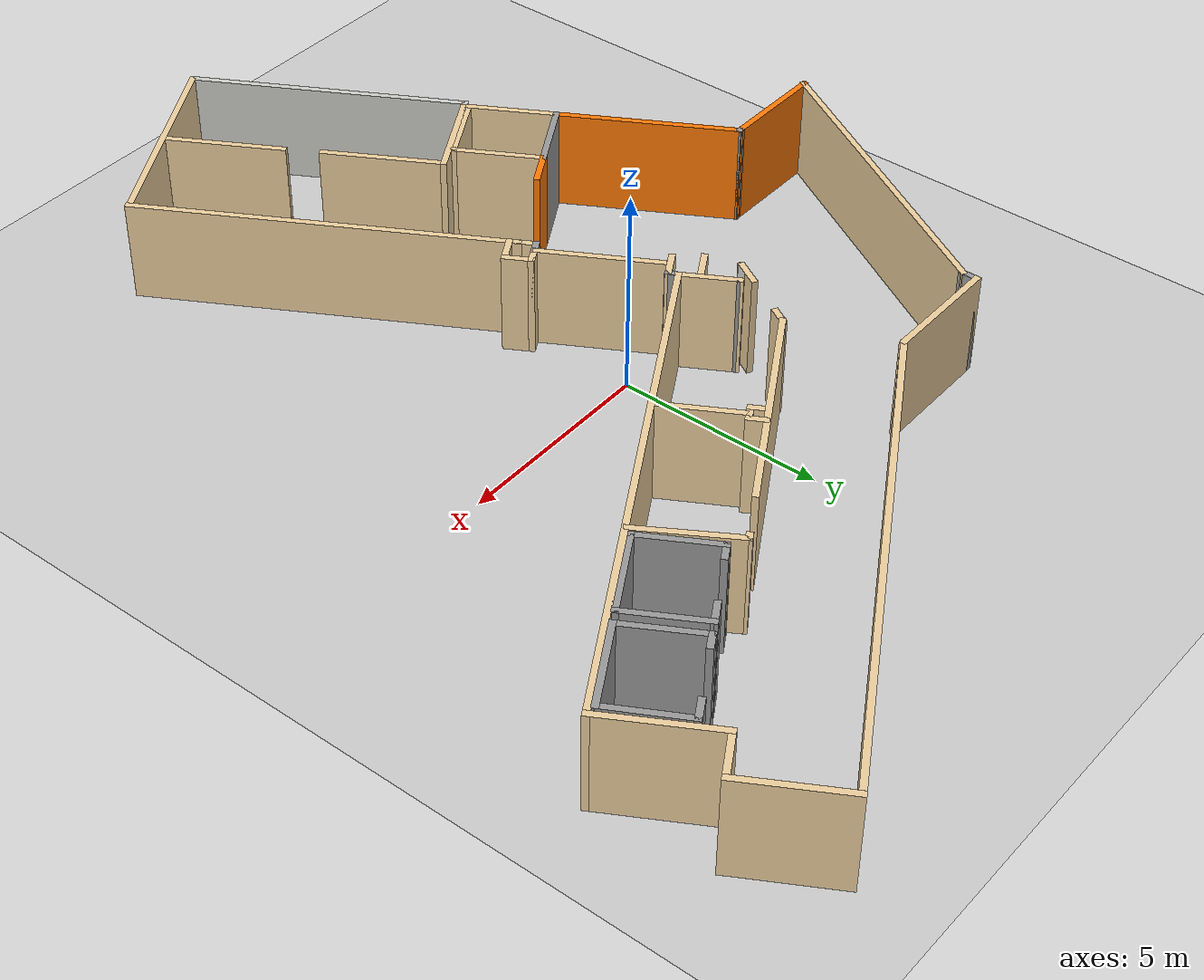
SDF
<sdf version='1.6'>
  <world name='default'>
    <light name='sun' type='directional'>
      <cast_shadows>1</cast_shadows>
      <pose frame=''>0 0 10 0 -0 0</pose>
      <diffuse>0.8 0.8 0.8 1</diffuse>
      <specular>0.1 0.1 0.1 1</specular>
      <attenuation>
        <range>1000</range>
        <constant>0.9</constant>
        <linear>0.01</linear>
        <quadratic>0.001</quadratic>
      </attenuation>
      <direction>-0.5 0.5 -1</direction>
    </light>
    <model name='ground_plane'>
      <static>1</static>
      <link name='link'>
        <collision name='collision'>
          <geometry>
            <plane>
              <normal>0 0 1</normal>
              <size>100 100</size>
            </plane>
          </geometry>
          <surface>
            <friction>
              <ode>
                <mu>100</mu>
                <mu2>50</mu2>
              </ode>
              <torsional>
                <ode/>
              </torsional>
            </friction>
            <contact>
              <ode/>
            </contact>
            <bounce/>
          </surface>
          <max_contacts>10</max_contacts>
        </collision>
        <visual name='visual'>
          <cast_shadows>0</cast_shadows>
          <geometry>
            <plane>
              <normal>0 0 1</normal>
              <size>100 100</size>
            </plane>
          </geometry>
          <material>
            <script>
              <uri>file://media/materials/scripts/gazebo.material</uri>
              <name>Gazebo/Grey</name>
            </script>
          </material>
        </visual>
        <self_collide>0</self_collide>
        <kinematic>0</kinematic>
        <gravity>1</gravity>
      </link>
    </model>
    <gravity>0 0 -9.8</gravity>
    <magnetic_field>6e-06 2.3e-05 -4.2e-05</magnetic_field>
    <atmosphere type='adiabatic'/>
    <physics name='default_physics' default='0' type='ode'>
      <max_step_size>0.001</max_step_size>
      <real_time_factor>1</real_time_factor>
      <real_time_update_rate>1000</real_time_update_rate>
    </physics>
    <scene>
      <ambient>0.4 0.4 0.4 1</ambient>
      <background>0.7 0.7 0.7 1</background>
      <shadows>1</shadows>
    </scene>
    <spherical_coordinates>
      <surface_model>EARTH_WGS84</surface_model>
      <latitude_deg>0</latitude_deg>
      <longitude_deg>0</longitude_deg>
      <elevation>0</elevation>
      <heading_deg>0</heading_deg>
    </spherical_coordinates>
    <model name='my_office_no_item'>
      <pose frame=''>0.391434 -0.86236 0 0 -0 0</pose>
      <link name='Wall_10'>
        <collision name='Wall_10_Collision'>
          <geometry>
            <box>
              <size>6.81721 0.15 2.5</size>
            </box>
          </geometry>
          <pose frame=''>0 0 1.25 0 -0 0</pose>
          <max_contacts>10</max_contacts>
          <surface>
            <contact>
              <ode/>
            </contact>
            <bounce/>
            <friction>
              <torsional>
                <ode/>
              </torsional>
              <ode/>
            </friction>
          </surface>
        </collision>
        <visual name='Wall_10_Visual'>
          <pose frame=''>0 0 1.25 0 -0 0</pose>
          <geometry>
            <box>
              <size>6.81721 0.15 2.5</size>
            </box>
          </geometry>
          <material>
            <script>
              <uri>file://media/materials/scripts/gazebo.material</uri>
              <name>Gazebo/CeilingTiled</name>
            </script>
            <ambient>0.921569 0.807843 0.615686 1</ambient>
          </material>
        </visual>
        <pose frame=''>-2.24104 -9.70627 0 0 0 -1.05271</pose>
        <self_collide>0</self_collide>
        <kinematic>0</kinematic>
        <gravity>1</gravity>
      </link>
      <link name='Wall_100'>
        <collision name='Wall_100_Collision'>
          <geometry>
            <box>
              <size>1.5 0.15 2.5</size>
            </box>
          </geometry>
          <pose frame=''>0 0 1.25 0 -0 0</pose>
          <max_contacts>10</max_contacts>
          <surface>
            <contact>
              <ode/>
            </contact>
            <bounce/>
            <friction>
              <torsional>
                <ode/>
              </torsional>
              <ode/>
            </friction>
          </surface>
        </collision>
        <visual name='Wall_100_Visual'>
          <pose frame=''>0 0 1.25 0 -0 0</pose>
          <geometry>
            <box>
              <size>1.5 0.15 2.5</size>
            </box>
          </geometry>
          <material>
            <script>
              <uri>file://media/materials/scripts/gazebo.material</uri>
              <name>Gazebo/Grey</name>
            </script>
            <ambient>0.921569 0.807843 0.615686 1</ambient>
          </material>
        </visual>
        <pose frame=''>-2.01529 1.80028 0 0 -0 2.0944</pose>
        <self_collide>0</self_collide>
        <kinematic>0</kinematic>
        <gravity>1</gravity>
      </link>
      <link name='Wall_101'>
        <collision name='Wall_101_Collision'>
          <geometry>
            <box>
              <size>0.704824 0.15 2.5</size>
            </box>
          </geometry>
          <pose frame=''>0 0 1.25 0 -0 0</pose>
          <max_contacts>10</max_contacts>
          <surface>
            <contact>
              <ode/>
            </contact>
            <bounce/>
            <friction>
              <torsional>
                <ode/>
              </torsional>
              <ode/>
            </friction>
          </surface>
        </collision>
        <visual name='Wall_101_Visual'>
          <pose frame=''>0 0 1.25 0 -0 0</pose>
          <geometry>
            <box>
              <size>0.704824 0.15 2.5</size>
            </box>
          </geometry>
          <material>
            <script>
              <uri>file://media/materials/scripts/gazebo.material</uri>
              <name>Gazebo/Grey</name>
            </script>
            <ambient>1 1 1 1</ambient>
          </material>
        </visual>
        <pose frame=''>-2.58645 2.23531 0 0 0 -2.5723</pose>
        <self_collide>0</self_collide>
        <kinematic>0</kinematic>
        <gravity>1</gravity>
      </link>
      <link name='Wall_103'>
        <collision name='Wall_103_Collision'>
          <geometry>
            <box>
              <size>0.75 0.15 2.5</size>
            </box>
          </geometry>
          <pose frame=''>0 0 1.25 0 -0 0</pose>
          <max_contacts>10</max_contacts>
          <surface>
            <contact>
              <ode/>
            </contact>
            <bounce/>
            <friction>
              <torsional>
                <ode/>
              </torsional>
              <ode/>
            </friction>
          </surface>
        </collision>
        <visual name='Wall_103_Visual'>
          <pose frame=''>0 0 1.25 0 -0 0</pose>
          <geometry>
            <box>
              <size>0.75 0.15 2.5</size>
            </box>
          </geometry>
          <material>
            <script>
              <uri>file://media/materials/scripts/gazebo.material</uri>
              <name>Gazebo/Grey</name>
            </script>
            <ambient>0.921569 0.807843 0.615686 1</ambient>
          </material>
        </visual>
        <pose frame=''>-2.30972 1.40421 0 0 -0 0.523599</pose>
        <self_collide>0</self_collide>
        <kinematic>0</kinematic>
        <gravity>1</gravity>
      </link>
      <link name='Wall_105'>
        <collision name='Wall_105_Collision'>
          <geometry>
            <box>
              <size>0.75 0.15 2.5</size>
            </box>
          </geometry>
          <pose frame=''>0 0 1.25 0 -0 0</pose>
          <max_contacts>10</max_contacts>
          <surface>
            <contact>
              <ode/>
            </contact>
            <bounce/>
            <friction>
              <torsional>
                <ode/>
              </torsional>
              <ode/>
            </friction>
          </surface>
        </collision>
        <visual name='Wall_105_Visual'>
          <pose frame=''>0 0 1.25 0 -0 0</pose>
          <geometry>
            <box>
              <size>0.75 0.15 2.5</size>
            </box>
          </geometry>
          <material>
            <script>
              <uri>file://media/materials/scripts/gazebo.material</uri>
              <name>Gazebo/Grey</name>
            </script>
            <ambient>0.921569 0.807843 0.615686 1</ambient>
          </material>
        </visual>
        <pose frame=''>-1.85346 0.856693 0 0 -0 0.523599</pose>
        <self_collide>0</self_collide>
        <kinematic>0</kinematic>
        <gravity>1</gravity>
      </link>
      <link name='Wall_107'>
        <collision name='Wall_107_Collision'>
          <geometry>
            <box>
              <size>0.375318 0.15 2.5</size>
            </box>
          </geometry>
          <pose frame=''>0 0 1.25 0 -0 0</pose>
          <max_contacts>10</max_contacts>
          <surface>
            <contact>
              <ode/>
            </contact>
            <bounce/>
            <friction>
              <torsional>
                <ode/>
              </torsional>
              <ode/>
            </friction>
          </surface>
        </collision>
        <visual name='Wall_107_Visual'>
          <pose frame=''>0 0 1.25 0 -0 0</pose>
          <geometry>
            <box>
              <size>0.375318 0.15 2.5</size>
            </box>
          </geometry>
          <material>
            <script>
              <uri>file://media/materials/scripts/gazebo.material</uri>
              <name>Gazebo/Grey</name>
            </script>
            <ambient>1 1 1 1</ambient>
          </material>
        </visual>
        <pose frame=''>-1.63572 1.1112 0 0 -0 1.9535</pose>
        <self_collide>0</self_collide>
        <kinematic>0</kinematic>
        <gravity>1</gravity>
      </link>
      <link name='Wall_114'>
        <collision name='Wall_114_Collision'>
          <geometry>
            <box>
              <size>3 0.15 2.5</size>
            </box>
          </geometry>
          <pose frame=''>0 0 1.25 0 -0 0</pose>
          <max_contacts>10</max_contacts>
          <surface>
            <contact>
              <ode/>
            </contact>
            <bounce/>
            <friction>
              <torsional>
                <ode/>
              </torsional>
              <ode/>
            </friction>
          </surface>
        </collision>
        <visual name='Wall_114_Visual'>
          <pose frame=''>0 0 1.25 0 -0 0</pose>
          <geometry>
            <box>
              <size>3 0.15 2.5</size>
            </box>
          </geometry>
          <material>
            <script>
              <uri>file://media/materials/scripts/gazebo.material</uri>
              <name>Gazebo/Grey</name>
            </script>
            <ambient>0.921569 0.807843 0.615686 1</ambient>
          </material>
        </visual>
        <pose frame=''>-1.09613 -0.526424 0 0 -0 2.0944</pose>
        <self_collide>0</self_collide>
        <kinematic>0</kinematic>
        <gravity>1</gravity>
      </link>
      <link name='Wall_118'>
        <collision name='Wall_118_Collision'>
          <geometry>
            <box>
              <size>0.5 0.15 2.5</size>
            </box>
          </geometry>
          <pose frame=''>0 0 1.25 0 -0 0</pose>
          <max_contacts>10</max_contacts>
          <surface>
            <contact>
              <ode/>
            </contact>
            <bounce/>
            <friction>
              <torsional>
                <ode/>
              </torsional>
              <ode/>
            </friction>
          </surface>
        </collision>
        <visual name='Wall_118_Visual'>
          <pose frame=''>0 0 1.25 0 -0 0</pose>
          <geometry>
            <box>
              <size>0.5 0.15 2.5</size>
            </box>
          </geometry>
          <material>
            <script>
              <uri>file://media/materials/scripts/gazebo.material</uri>
              <name>Gazebo/Grey</name>
            </script>
            <ambient>0.921569 0.807843 0.615686 1</ambient>
          </material>
        </visual>
        <pose frame=''>-0.232079 -1.67301 0 0 -0 0.523599</pose>
        <self_collide>0</self_collide>
        <kinematic>0</kinematic>
        <gravity>1</gravity>
      </link>
      <link name='Wall_119'>
        <collision name='Wall_119_Collision'>
          <geometry>
            <box>
              <size>0.75 0.15 2.5</size>
            </box>
          </geometry>
          <pose frame=''>0 0 1.25 0 -0 0</pose>
          <max_contacts>10</max_contacts>
          <surface>
            <contact>
              <ode/>
            </contact>
            <bounce/>
            <friction>
              <torsional>
                <ode/>
              </torsional>
              <ode/>
            </friction>
          </surface>
        </collision>
        <visual name='Wall_119_Visual'>
          <pose frame=''>0 0 1.25 0 -0 0</pose>
          <geometry>
            <box>
              <size>0.75 0.15 2.5</size>
            </box>
          </geometry>
          <material>
            <script>
              <uri>file://media/materials/scripts/gazebo.material</uri>
              <name>Gazebo/Grey</name>
            </script>
            <ambient>0.921569 0.807843 0.615686 1</ambient>
          </material>
        </visual>
        <pose frame=''>0.069475 -1.84532 0 0 0 -1.0472</pose>
        <self_collide>0</self_collide>
        <kinematic>0</kinematic>
        <gravity>1</gravity>
      </link>
      <link name='Wall_12'>
        <collision name='Wall_12_Collision'>
          <geometry>
            <box>
              <size>2.7 0.15 2.5</size>
            </box>
          </geometry>
          <pose frame=''>0 0 1.25 0 -0 0</pose>
          <max_contacts>10</max_contacts>
          <surface>
            <contact>
              <ode/>
            </contact>
            <bounce/>
            <friction>
              <torsional>
                <ode/>
              </torsional>
              <ode/>
            </friction>
          </surface>
        </collision>
        <visual name='Wall_12_Visual'>
          <pose frame=''>0 0 1.25 0 -0 0</pose>
          <geometry>
            <box>
              <size>2.7 0.15 2.5</size>
            </box>
          </geometry>
          <material>
            <script>
              <uri>file://media/materials/scripts/gazebo.material</uri>
              <name>Gazebo/Grey</name>
            </script>
            <ambient>0.921569 0.807843 0.615686 1</ambient>
          </material>
        </visual>
        <pose frame=''>-2.78771 -6.17263 0 0 -0 0.523599</pose>
        <self_collide>0</self_collide>
        <kinematic>0</kinematic>
        <gravity>1</gravity>
      </link>
      <link name='Wall_121'>
        <collision name='Wall_121_Collision'>
          <geometry>
            <box>
              <size>0.75 0.15 2.5</size>
            </box>
          </geometry>
          <pose frame=''>0 0 1.25 0 -0 0</pose>
          <max_contacts>10</max_contacts>
          <surface>
            <contact>
              <ode/>
            </contact>
            <bounce/>
            <friction>
              <torsional>
                <ode/>
              </torsional>
              <ode/>
            </friction>
          </surface>
        </collision>
        <visual name='Wall_121_Visual'>
          <pose frame=''>0 0 1.25 0 -0 0</pose>
          <geometry>
            <box>
              <size>0.75 0.15 2.5</size>
            </box>
          </geometry>
          <material>
            <script>
              <uri>file://media/materials/scripts/gazebo.material</uri>
              <name>Gazebo/Grey</name>
            </script>
            <ambient>0.921569 0.807843 0.615686 1</ambient>
          </material>
        </visual>
        <pose frame=''>-0.040333 -2.25513 0 0 0 -2.61799</pose>
        <self_collide>0</self_collide>
        <kinematic>0</kinematic>
        <gravity>1</gravity>
      </link>
      <link name='Wall_127'>
        <collision name='Wall_127_Collision'>
          <geometry>
            <box>
              <size>0.75 0.15 2.5</size>
            </box>
          </geometry>
          <pose frame=''>0 0 1.25 0 -0 0</pose>
          <max_contacts>10</max_contacts>
          <surface>
            <contact>
              <ode/>
            </contact>
            <bounce/>
            <friction>
              <torsional>
                <ode/>
              </torsional>
              <ode/>
            </friction>
          </surface>
        </collision>
        <visual name='Wall_127_Visual'>
          <pose frame=''>0 0 1.25 0 -0 0</pose>
          <geometry>
            <box>
              <size>0.75 0.15 2.5</size>
            </box>
          </geometry>
          <material>
            <script>
              <uri>file://media/materials/scripts/gazebo.material</uri>
              <name>Gazebo/Grey</name>
            </script>
            <ambient>0.921569 0.807843 0.615686 1</ambient>
          </material>
        </visual>
        <pose frame=''>-0.45014 -2.14532 0 0 -0 2.0944</pose>
        <self_collide>0</self_collide>
        <kinematic>0</kinematic>
        <gravity>1</gravity>
      </link>
      <link name='Wall_128'>
        <collision name='Wall_128_Collision'>
          <geometry>
            <box>
              <size>0.4 0.15 2.5</size>
            </box>
          </geometry>
          <pose frame=''>0 0 1.25 0 -0 0</pose>
          <max_contacts>10</max_contacts>
          <surface>
            <contact>
              <ode/>
            </contact>
            <bounce/>
            <friction>
              <torsional>
                <ode/>
              </torsional>
              <ode/>
            </friction>
          </surface>
        </collision>
        <visual name='Wall_128_Visual'>
          <pose frame=''>0 0 1.25 0 -0 0</pose>
          <geometry>
            <box>
              <size>0.4 0.15 2.5</size>
            </box>
          </geometry>
          <material>
            <script>
              <uri>file://media/materials/scripts/gazebo.material</uri>
              <name>Gazebo/Grey</name>
            </script>
            <ambient>1 1 1 1</ambient>
          </material>
        </visual>
        <pose frame=''>-0.491887 -1.82301 0 0 -0 0.523599</pose>
        <self_collide>0</self_collide>
        <kinematic>0</kinematic>
        <gravity>1</gravity>
      </link>
      <link name='Wall_130'>
        <collision name='Wall_130_Collision'>
          <geometry>
            <box>
              <size>2 0.15 2.5</size>
            </box>
          </geometry>
          <pose frame=''>0 0 1.25 0 -0 0</pose>
          <max_contacts>10</max_contacts>
          <surface>
            <contact>
              <ode/>
            </contact>
            <bounce/>
            <friction>
              <torsional>
                <ode/>
              </torsional>
              <ode/>
            </friction>
          </surface>
        </collision>
        <visual name='Wall_130_Visual'>
          <pose frame=''>0 0 1.25 0 -0 0</pose>
          <geometry>
            <box>
              <size>2 0.15 2.5</size>
            </box>
          </geometry>
          <material>
            <script>
              <uri>file://media/materials/scripts/gazebo.material</uri>
              <name>Gazebo/Grey</name>
            </script>
            <ambient>0.921569 0.807843 0.615686 1</ambient>
          </material>
        </visual>
        <pose frame=''>1.6661 4.2808 0 0 -0 2.0944</pose>
        <self_collide>0</self_collide>
        <kinematic>0</kinematic>
        <gravity>1</gravity>
      </link>
      <link name='Wall_132'>
        <collision name='Wall_132_Collision'>
          <geometry>
            <box>
              <size>0.5 0.15 2.5</size>
            </box>
          </geometry>
          <pose frame=''>0 0 1.25 0 -0 0</pose>
          <max_contacts>10</max_contacts>
          <surface>
            <contact>
              <ode/>
            </contact>
            <bounce/>
            <friction>
              <torsional>
                <ode/>
              </torsional>
              <ode/>
            </friction>
          </surface>
        </collision>
        <visual name='Wall_132_Visual'>
          <pose frame=''>0 0 1.25 0 -0 0</pose>
          <geometry>
            <box>
              <size>0.5 0.15 2.5</size>
            </box>
          </geometry>
          <material>
            <script>
              <uri>file://media/materials/scripts/gazebo.material</uri>
              <name>Gazebo/Grey</name>
            </script>
            <ambient>0.921569 0.807843 0.615686 1</ambient>
          </material>
        </visual>
        <pose frame=''>0.900947 5.21621 0 0 0 -1.0472</pose>
        <self_collide>0</self_collide>
        <kinematic>0</kinematic>
        <gravity>1</gravity>
      </link>
      <link name='Wall_133'>
        <collision name='Wall_133_Collision'>
          <geometry>
            <box>
              <size>0.5 0.15 2.5</size>
            </box>
          </geometry>
          <pose frame=''>0 0 1.25 0 -0 0</pose>
          <max_contacts>10</max_contacts>
          <surface>
            <contact>
              <ode/>
            </contact>
            <bounce/>
            <friction>
              <torsional>
                <ode/>
              </torsional>
              <ode/>
            </friction>
          </surface>
        </collision>
        <visual name='Wall_133_Visual'>
          <pose frame=''>0 0 1.25 0 -0 0</pose>
          <geometry>
            <box>
              <size>0.5 0.15 2.5</size>
            </box>
          </geometry>
          <material>
            <script>
              <uri>file://media/materials/scripts/gazebo.material</uri>
              <name>Gazebo/Grey</name>
            </script>
            <ambient>0.921569 0.807843 0.615686 1</ambient>
          </material>
        </visual>
        <pose frame=''>1.14 5.15215 0 0 -0 0.523599</pose>
        <self_collide>0</self_collide>
        <kinematic>0</kinematic>
        <gravity>1</gravity>
      </link>
      <link name='Wall_134'>
        <collision name='Wall_134_Collision'>
          <geometry>
            <box>
              <size>0.5 0.15 2.5</size>
            </box>
          </geometry>
          <pose frame=''>0 0 1.25 0 -0 0</pose>
          <max_contacts>10</max_contacts>
          <surface>
            <contact>
              <ode/>
            </contact>
            <bounce/>
            <friction>
              <torsional>
                <ode/>
              </torsional>
              <ode/>
            </friction>
          </surface>
        </collision>
        <visual name='Wall_134_Visual'>
          <pose frame=''>0 0 1.25 0 -0 0</pose>
          <geometry>
            <box>
              <size>0.5 0.15 2.5</size>
            </box>
          </geometry>
          <material>
            <script>
              <uri>file://media/materials/scripts/gazebo.material</uri>
              <name>Gazebo/Grey</name>
            </script>
            <ambient>0.921569 0.807843 0.615686 1</ambient>
          </material>
        </visual>
        <pose frame=''>1.20406 5.39121 0 0 -0 2.0944</pose>
        <self_collide>0</self_collide>
        <kinematic>0</kinematic>
        <gravity>1</gravity>
      </link>
      <link name='Wall_138'>
        <collision name='Wall_138_Collision'>
          <geometry>
            <box>
              <size>0.5 0.15 2.5</size>
            </box>
          </geometry>
          <pose frame=''>0 0 1.25 0 -0 0</pose>
          <max_contacts>10</max_contacts>
          <surface>
            <contact>
              <ode/>
            </contact>
            <bounce/>
            <friction>
              <torsional>
                <ode/>
              </torsional>
              <ode/>
            </friction>
          </surface>
        </collision>
        <visual name='Wall_138_Visual'>
          <pose frame=''>0 0 1.25 0 -0 0</pose>
          <geometry>
            <box>
              <size>0.5 0.15 2.5</size>
            </box>
          </geometry>
          <material>
            <script>
              <uri>file://media/materials/scripts/gazebo.material</uri>
              <name>Gazebo/Grey</name>
            </script>
            <ambient>0.921569 0.807843 0.615686 1</ambient>
          </material>
        </visual>
        <pose frame=''>-1.85761 3.75287 0 0 0 -2.0944</pose>
        <self_collide>0</self_collide>
        <kinematic>0</kinematic>
        <gravity>1</gravity>
      </link>
      <link name='Wall_140'>
        <collision name='Wall_140_Collision'>
          <geometry>
            <box>
              <size>0.75 0.15 2.5</size>
            </box>
          </geometry>
          <pose frame=''>0 0 1.25 0 -0 0</pose>
          <max_contacts>10</max_contacts>
          <surface>
            <contact>
              <ode/>
            </contact>
            <bounce/>
            <friction>
              <torsional>
                <ode/>
              </torsional>
              <ode/>
            </friction>
          </surface>
        </collision>
        <visual name='Wall_140_Visual'>
          <pose frame=''>0 0 1.25 0 -0 0</pose>
          <geometry>
            <box>
              <size>0.75 0.15 2.5</size>
            </box>
          </geometry>
          <material>
            <script>
              <uri>file://media/materials/scripts/gazebo.material</uri>
              <name>Gazebo/Grey</name>
            </script>
            <ambient>0.921569 0.807843 0.615686 1</ambient>
          </material>
        </visual>
        <pose frame=''>-2.67011 2.34558 0 0 -0 1.0472</pose>
        <self_collide>0</self_collide>
        <kinematic>0</kinematic>
        <gravity>1</gravity>
      </link>
      <link name='Wall_142'>
        <collision name='Wall_142_Collision'>
          <geometry>
            <box>
              <size>5.75 0.15 2.5</size>
            </box>
          </geometry>
          <pose frame=''>0 0 1.25 0 -0 0</pose>
          <max_contacts>10</max_contacts>
          <surface>
            <contact>
              <ode/>
            </contact>
            <bounce/>
            <friction>
              <torsional>
                <ode/>
              </torsional>
              <ode/>
            </friction>
          </surface>
        </collision>
        <visual name='Wall_142_Visual'>
          <pose frame=''>0 0 1.25 0 -0 0</pose>
          <geometry>
            <box>
              <size>5.75 0.15 2.5</size>
            </box>
          </geometry>
          <material>
            <script>
              <uri>file://media/materials/scripts/gazebo.material</uri>
              <name>Gazebo/Grey</name>
            </script>
            <ambient>0.921569 0.807843 0.615686 1</ambient>
          </material>
        </visual>
        <pose frame=''>0.654765 5.30443 0 0 -0 0.523599</pose>
        <self_collide>0</self_collide>
        <kinematic>0</kinematic>
        <gravity>1</gravity>
      </link>
      <link name='Wall_144'>
        <collision name='Wall_144_Collision'>
          <geometry>
            <box>
              <size>0.25 0.15 2.5</size>
            </box>
          </geometry>
          <pose frame=''>0 0 1.25 0 -0 0</pose>
          <max_contacts>10</max_contacts>
          <surface>
            <contact>
              <ode/>
            </contact>
            <bounce/>
            <friction>
              <torsional>
                <ode/>
              </torsional>
              <ode/>
            </friction>
          </surface>
        </collision>
        <visual name='Wall_144_Visual'>
          <pose frame=''>0 0 1.25 0 -0 0</pose>
          <geometry>
            <box>
              <size>0.25 0.15 2.5</size>
            </box>
          </geometry>
          <material>
            <script>
              <uri>file://media/materials/scripts/gazebo.material</uri>
              <name>Gazebo/Grey</name>
            </script>
            <ambient>0.921569 0.807843 0.615686 1</ambient>
          </material>
        </visual>
        <pose frame=''>4.11887 7.30443 0 0 0 -2.61799</pose>
        <self_collide>0</self_collide>
        <kinematic>0</kinematic>
        <gravity>1</gravity>
      </link>
      <link name='Wall_146'>
        <collision name='Wall_146_Collision'>
          <geometry>
            <box>
              <size>1 0.15 2.5</size>
            </box>
          </geometry>
          <pose frame=''>0 0 1.25 0 -0 0</pose>
          <max_contacts>10</max_contacts>
          <surface>
            <contact>
              <ode/>
            </contact>
            <bounce/>
            <friction>
              <torsional>
                <ode/>
              </torsional>
              <ode/>
            </friction>
          </surface>
        </collision>
        <visual name='Wall_146_Visual'>
          <pose frame=''>0 0 1.25 0 -0 0</pose>
          <geometry>
            <box>
              <size>1 0.15 2.5</size>
            </box>
          </geometry>
          <material>
            <script>
              <uri>file://media/materials/scripts/gazebo.material</uri>
              <name>Gazebo/Grey</name>
            </script>
            <ambient>0.996078 0.47451 0.0196078 1</ambient>
          </material>
        </visual>
        <pose frame=''>-2.92194 -3.69198 0 0 -0 0.523599</pose>
        <self_collide>0</self_collide>
        <kinematic>0</kinematic>
        <gravity>1</gravity>
      </link>
      <link name='Wall_148'>
        <collision name='Wall_148_Collision'>
          <geometry>
            <box>
              <size>3 0.15 2.5</size>
            </box>
          </geometry>
          <pose frame=''>0 0 1.25 0 -0 0</pose>
          <max_contacts>10</max_contacts>
          <surface>
            <contact>
              <ode/>
            </contact>
            <bounce/>
            <friction>
              <torsional>
                <ode/>
              </torsional>
              <ode/>
            </friction>
          </surface>
        </collision>
        <visual name='Wall_148_Visual'>
          <pose frame=''>0 0 1.25 0 -0 0</pose>
          <geometry>
            <box>
              <size>3 0.15 2.5</size>
            </box>
          </geometry>
          <material>
            <script>
              <uri>file://media/materials/scripts/gazebo.material</uri>
              <name>Gazebo/Grey</name>
            </script>
            <ambient>0.921569 0.807843 0.615686 1</ambient>
          </material>
        </visual>
        <pose frame=''>-0.971033 -6.76922 0 0 0 -1.0472</pose>
        <self_collide>0</self_collide>
        <kinematic>0</kinematic>
        <gravity>1</gravity>
      </link>
      <link name='Wall_151'>
        <collision name='Wall_151_Collision'>
          <geometry>
            <box>
              <size>3 0.15 2.5</size>
            </box>
          </geometry>
          <pose frame=''>0 0 1.25 0 -0 0</pose>
          <max_contacts>10</max_contacts>
          <surface>
            <contact>
              <ode/>
            </contact>
            <bounce/>
            <friction>
              <torsional>
                <ode/>
              </torsional>
              <ode/>
            </friction>
          </surface>
        </collision>
        <visual name='Wall_151_Visual'>
          <pose frame=''>0 0 1.25 0 -0 0</pose>
          <geometry>
            <box>
              <size>3 0.15 2.5</size>
            </box>
          </geometry>
          <material>
            <script>
              <uri>file://media/materials/scripts/gazebo.material</uri>
              <name>Gazebo/Grey</name>
            </script>
            <ambient>0.921569 0.807843 0.615686 1</ambient>
          </material>
        </visual>
        <pose frame=''>0.936909 -10.0288 0 0 0 -1.0472</pose>
        <self_collide>0</self_collide>
        <kinematic>0</kinematic>
        <gravity>1</gravity>
      </link>
      <link name='Wall_20'>
        <collision name='Wall_20_Collision'>
          <geometry>
            <box>
              <size>2 0.15 2.5</size>
            </box>
          </geometry>
          <pose frame=''>0 0 1.25 0 -0 0</pose>
          <max_contacts>10</max_contacts>
          <surface>
            <contact>
              <ode/>
            </contact>
            <bounce/>
            <friction>
              <torsional>
                <ode/>
              </torsional>
              <ode/>
            </friction>
          </surface>
        </collision>
        <visual name='Wall_20_Visual'>
          <pose frame=''>0 0 1.25 0 -0 0</pose>
          <geometry>
            <box>
              <size>2 0.15 2.5</size>
            </box>
          </geometry>
          <material>
            <script>
              <uri>file://media/materials/scripts/gazebo.material</uri>
              <name>Gazebo/Grey</name>
            </script>
            <ambient>0.921569 0.807843 0.615686 1</ambient>
          </material>
        </visual>
        <pose frame=''>-3.04107 -6.18563 0 0 -0 0.523599</pose>
        <self_collide>0</self_collide>
        <kinematic>0</kinematic>
        <gravity>1</gravity>
      </link>
      <link name='Wall_23'>
        <collision name='Wall_23_Collision'>
          <geometry>
            <box>
              <size>2.25 0.15 2.5</size>
            </box>
          </geometry>
          <pose frame=''>0 0 1.25 0 -0 0</pose>
          <max_contacts>10</max_contacts>
          <surface>
            <contact>
              <ode/>
            </contact>
            <bounce/>
            <friction>
              <torsional>
                <ode/>
              </torsional>
              <ode/>
            </friction>
          </surface>
        </collision>
        <visual name='Wall_23_Visual'>
          <pose frame=''>0 0 1.25 0 -0 0</pose>
          <geometry>
            <box>
              <size>2.25 0.15 2.5</size>
            </box>
          </geometry>
          <material>
            <script>
              <uri>file://media/materials/scripts/gazebo.material</uri>
              <name>Gazebo/Grey</name>
            </script>
            <ambient>0.921569 0.807843 0.615686 1</ambient>
          </material>
        </visual>
        <pose frame=''>-4.36715 -5.73881 0 0 -0 2.0944</pose>
        <self_collide>0</self_collide>
        <kinematic>0</kinematic>
        <gravity>1</gravity>
      </link>
      <link name='Wall_24'>
        <collision name='Wall_24_Collision'>
          <geometry>
            <box>
              <size>2 0.15 2.5</size>
            </box>
          </geometry>
          <pose frame=''>0 0 1.25 0 -0 0</pose>
          <max_contacts>10</max_contacts>
          <surface>
            <contact>
              <ode/>
            </contact>
            <bounce/>
            <friction>
              <torsional>
                <ode/>
              </torsional>
              <ode/>
            </friction>
          </surface>
        </collision>
        <visual name='Wall_24_Visual'>
          <pose frame=''>0 0 1.25 0 -0 0</pose>
          <geometry>
            <box>
              <size>2 0.15 2.5</size>
            </box>
          </geometry>
          <material>
            <script>
              <uri>file://media/materials/scripts/gazebo.material</uri>
              <name>Gazebo/Grey</name>
            </script>
            <ambient>1 1 1 1</ambient>
          </material>
        </visual>
        <pose frame=''>-4.09107 -4.36698 0 0 -0 0.523599</pose>
        <self_collide>0</self_collide>
        <kinematic>0</kinematic>
        <gravity>1</gravity>
      </link>
      <link name='Wall_25'>
        <collision name='Wall_25_Collision'>
          <geometry>
            <box>
              <size>2.25 0.15 2.5</size>
            </box>
          </geometry>
          <pose frame=''>0 0 1.25 0 -0 0</pose>
          <max_contacts>10</max_contacts>
          <surface>
            <contact>
              <ode/>
            </contact>
            <bounce/>
            <friction>
              <torsional>
                <ode/>
              </torsional>
              <ode/>
            </friction>
          </surface>
        </collision>
        <visual name='Wall_25_Visual'>
          <pose frame=''>0 0 1.25 0 -0 0</pose>
          <geometry>
            <box>
              <size>2.25 0.15 2.5</size>
            </box>
          </geometry>
          <material>
            <script>
              <uri>file://media/materials/scripts/gazebo.material</uri>
              <name>Gazebo/Grey</name>
            </script>
            <ambient>0.921569 0.807843 0.615686 1</ambient>
          </material>
        </visual>
        <pose frame=''>-2.765 -4.81381 0 0 0 -1.0472</pose>
        <self_collide>0</self_collide>
        <kinematic>0</kinematic>
        <gravity>1</gravity>
      </link>
      <link name='Wall_28'>
        <collision name='Wall_28_Collision'>
          <geometry>
            <box>
              <size>9.03253 0.15 2.5</size>
            </box>
          </geometry>
          <pose frame=''>0 0 1.25 0 -0 0</pose>
          <max_contacts>10</max_contacts>
          <surface>
            <contact>
              <ode/>
            </contact>
            <bounce/>
            <friction>
              <torsional>
                <ode/>
              </torsional>
              <ode/>
            </friction>
          </surface>
        </collision>
        <visual name='Wall_28_Visual'>
          <pose frame=''>0 0 1.25 0 -0 0</pose>
          <geometry>
            <box>
              <size>9.03253 0.15 2.5</size>
            </box>
          </geometry>
          <material>
            <script>
              <uri>file://media/materials/scripts/gazebo.material</uri>
              <name>Gazebo/Grey</name>
            </script>
            <ambient>0.921569 0.807843 0.615686 1</ambient>
          </material>
        </visual>
        <pose frame=''>1.81712 -6.06844 0 0 0 -1.04842</pose>
        <self_collide>0</self_collide>
        <kinematic>0</kinematic>
        <gravity>1</gravity>
      </link>
      <link name='Wall_30'>
        <collision name='Wall_30_Collision'>
          <geometry>
            <box>
              <size>4.5 0.15 2.5</size>
            </box>
          </geometry>
          <pose frame=''>0 0 1.25 0 -0 0</pose>
          <max_contacts>10</max_contacts>
          <surface>
            <contact>
              <ode/>
            </contact>
            <bounce/>
            <friction>
              <torsional>
                <ode/>
              </torsional>
              <ode/>
            </friction>
          </surface>
        </collision>
        <visual name='Wall_30_Visual'>
          <pose frame=''>0 0 1.25 0 -0 0</pose>
          <geometry>
            <box>
              <size>4.5 0.15 2.5</size>
            </box>
          </geometry>
          <material>
            <script>
              <uri>file://media/materials/scripts/gazebo.material</uri>
              <name>Gazebo/Grey</name>
            </script>
            <ambient>0.996078 0.47451 0.0196078 1</ambient>
          </material>
        </visual>
        <pose frame=''>-5.97965 -2.94587 0 0 -0 2.0944</pose>
        <self_collide>0</self_collide>
        <kinematic>0</kinematic>
        <gravity>1</gravity>
      </link>
      <link name='Wall_31'>
        <collision name='Wall_31_Collision'>
          <geometry>
            <box>
              <size>0.15 0.15 2.5</size>
            </box>
          </geometry>
          <pose frame=''>0 0 1.25 0 -0 0</pose>
          <max_contacts>10</max_contacts>
          <surface>
            <contact>
              <ode/>
            </contact>
            <bounce/>
            <friction>
              <torsional>
                <ode/>
              </torsional>
              <ode/>
            </friction>
          </surface>
        </collision>
        <visual name='Wall_31_Visual'>
          <pose frame=''>0 0 1.25 0 -0 0</pose>
          <geometry>
            <box>
              <size>0.15 0.15 2.5</size>
            </box>
          </geometry>
          <material>
            <script>
              <uri>file://media/materials/scripts/gazebo.material</uri>
              <name>Gazebo/Grey</name>
            </script>
            <ambient>1 1 1 1</ambient>
          </material>
        </visual>
        <pose frame=''>-7.06715 -1.06227 0 0 -0 0</pose>
        <self_collide>0</self_collide>
        <kinematic>0</kinematic>
        <gravity>1</gravity>
      </link>
      <link name='Wall_34'>
        <collision name='Wall_34_Collision'>
          <geometry>
            <box>
              <size>2.75 0.15 2.5</size>
            </box>
          </geometry>
          <pose frame=''>0 0 1.25 0 -0 0</pose>
          <max_contacts>10</max_contacts>
          <surface>
            <contact>
              <ode/>
            </contact>
            <bounce/>
            <friction>
              <torsional>
                <ode/>
              </torsional>
              <ode/>
            </friction>
          </surface>
        </collision>
        <visual name='Wall_34_Visual'>
          <pose frame=''>0 0 1.25 0 -0 0</pose>
          <geometry>
            <box>
              <size>2.75 0.15 2.5</size>
            </box>
          </geometry>
          <material>
            <script>
              <uri>file://media/materials/scripts/gazebo.material</uri>
              <name>Gazebo/Grey</name>
            </script>
            <ambient>0.996078 0.47451 0.0196078 1</ambient>
          </material>
        </visual>
        <pose frame=''>-8.36715 -1.06227 0 0 -0 3.14159</pose>
        <self_collide>0</self_collide>
        <kinematic>0</kinematic>
        <gravity>1</gravity>
      </link>
      <link name='Wall_35'>
        <collision name='Wall_35_Collision'>
          <geometry>
            <box>
              <size>8.25 0.15 2.5</size>
            </box>
          </geometry>
          <pose frame=''>0 0 1.25 0 -0 0</pose>
          <max_contacts>10</max_contacts>
          <surface>
            <contact>
              <ode/>
            </contact>
            <bounce/>
            <friction>
              <torsional>
                <ode/>
              </torsional>
              <ode/>
            </friction>
          </surface>
        </collision>
        <visual name='Wall_35_Visual'>
          <pose frame=''>0 0 1.25 0 -0 0</pose>
          <geometry>
            <box>
              <size>8.25 0.15 2.5</size>
            </box>
          </geometry>
          <material>
            <script>
              <uri>file://media/materials/scripts/gazebo.material</uri>
              <name>Gazebo/Grey</name>
            </script>
            <ambient>0.921569 0.807843 0.615686 1</ambient>
          </material>
        </visual>
        <pose frame=''>-7.64215 2.44513 0 0 -0 1.0472</pose>
        <self_collide>0</self_collide>
        <kinematic>0</kinematic>
        <gravity>1</gravity>
      </link>
      <link name='Wall_37'>
        <collision name='Wall_37_Collision'>
          <geometry>
            <box>
              <size>0.5 0.15 2.5</size>
            </box>
          </geometry>
          <pose frame=''>0 0 1.25 0 -0 0</pose>
          <max_contacts>10</max_contacts>
          <surface>
            <contact>
              <ode/>
            </contact>
            <bounce/>
            <friction>
              <torsional>
                <ode/>
              </torsional>
              <ode/>
            </friction>
          </surface>
        </collision>
        <visual name='Wall_37_Visual'>
          <pose frame=''>0 0 1.25 0 -0 0</pose>
          <geometry>
            <box>
              <size>0.5 0.15 2.5</size>
            </box>
          </geometry>
          <material>
            <script>
              <uri>file://media/materials/scripts/gazebo.material</uri>
              <name>Gazebo/Grey</name>
            </script>
            <ambient>1 1 1 1</ambient>
          </material>
        </visual>
        <pose frame=''>-5.61715 6.12754 0 0 -0 1.5708</pose>
        <self_collide>0</self_collide>
        <kinematic>0</kinematic>
        <gravity>1</gravity>
      </link>
      <link name='Wall_38'>
        <collision name='Wall_38_Collision'>
          <geometry>
            <box>
              <size>3 0.15 2.5</size>
            </box>
          </geometry>
          <pose frame=''>0 0 1.25 0 -0 0</pose>
          <max_contacts>10</max_contacts>
          <surface>
            <contact>
              <ode/>
            </contact>
            <bounce/>
            <friction>
              <torsional>
                <ode/>
              </torsional>
              <ode/>
            </friction>
          </surface>
        </collision>
        <visual name='Wall_38_Visual'>
          <pose frame=''>0 0 1.25 0 -0 0</pose>
          <geometry>
            <box>
              <size>3 0.15 2.5</size>
            </box>
          </geometry>
          <material>
            <script>
              <uri>file://media/materials/scripts/gazebo.material</uri>
              <name>Gazebo/Grey</name>
            </script>
            <ambient>0.921569 0.807843 0.615686 1</ambient>
          </material>
        </visual>
        <pose frame=''>-4.19215 6.30254 0 0 -0 0</pose>
        <self_collide>0</self_collide>
        <kinematic>0</kinematic>
        <gravity>1</gravity>
      </link>
      <link name='Wall_39'>
        <collision name='Wall_39_Collision'>
          <geometry>
            <box>
              <size>12.75 0.15 2.5</size>
            </box>
          </geometry>
          <pose frame=''>0 0 1.25 0 -0 0</pose>
          <max_contacts>10</max_contacts>
          <surface>
            <contact>
              <ode/>
            </contact>
            <bounce/>
            <friction>
              <torsional>
                <ode/>
              </torsional>
              <ode/>
            </friction>
          </surface>
        </collision>
        <visual name='Wall_39_Visual'>
          <pose frame=''>0 0 1.25 0 -0 0</pose>
          <geometry>
            <box>
              <size>12.75 0.15 2.5</size>
            </box>
          </geometry>
          <material>
            <script>
              <uri>file://media/materials/scripts/gazebo.material</uri>
              <name>Gazebo/Grey</name>
            </script>
            <ambient>0.921569 0.807843 0.615686 1</ambient>
          </material>
        </visual>
        <pose frame=''>2.68881 9.45254 0 0 -0 0.523599</pose>
        <self_collide>0</self_collide>
        <kinematic>0</kinematic>
        <gravity>1</gravity>
      </link>
      <link name='Wall_41'>
        <collision name='Wall_41_Collision'>
          <geometry>
            <box>
              <size>2.5 0.15 2.5</size>
            </box>
          </geometry>
          <pose frame=''>0 0 1.25 0 -0 0</pose>
          <max_contacts>10</max_contacts>
          <surface>
            <contact>
              <ode/>
            </contact>
            <bounce/>
            <friction>
              <torsional>
                <ode/>
              </torsional>
              <ode/>
            </friction>
          </surface>
        </collision>
        <visual name='Wall_41_Visual'>
          <pose frame=''>0 0 1.25 0 -0 0</pose>
          <geometry>
            <box>
              <size>2.5 0.15 2.5</size>
            </box>
          </geometry>
          <material>
            <script>
              <uri>file://media/materials/scripts/gazebo.material</uri>
              <name>Gazebo/Grey</name>
            </script>
            <ambient>0.921569 0.807843 0.615686 1</ambient>
          </material>
        </visual>
        <pose frame=''>8.73227 11.585 0 0 0 -1.0472</pose>
        <self_collide>0</self_collide>
        <kinematic>0</kinematic>
        <gravity>1</gravity>
      </link>
      <link name='Wall_42'>
        <collision name='Wall_42_Collision'>
          <geometry>
            <box>
              <size>1.25 0.15 2.5</size>
            </box>
          </geometry>
          <pose frame=''>0 0 1.25 0 -0 0</pose>
          <max_contacts>10</max_contacts>
          <surface>
            <contact>
              <ode/>
            </contact>
            <bounce/>
            <friction>
              <torsional>
                <ode/>
              </torsional>
              <ode/>
            </friction>
          </surface>
        </collision>
        <visual name='Wall_42_Visual'>
          <pose frame=''>0 0 1.25 0 -0 0</pose>
          <geometry>
            <box>
              <size>1.25 0.15 2.5</size>
            </box>
          </geometry>
          <material>
            <script>
              <uri>file://media/materials/scripts/gazebo.material</uri>
              <name>Gazebo/Grey</name>
            </script>
            <ambient>0.921569 0.807843 0.615686 1</ambient>
          </material>
        </visual>
        <pose frame=''>8.84346 10.2924 0 0 0 -2.61799</pose>
        <self_collide>0</self_collide>
        <kinematic>0</kinematic>
        <gravity>1</gravity>
      </link>
      <link name='Wall_46'>
        <collision name='Wall_46_Collision'>
          <geometry>
            <box>
              <size>1.98692 0.15 2.5</size>
            </box>
          </geometry>
          <pose frame=''>0 0 1.25 0 -0 0</pose>
          <max_contacts>10</max_contacts>
          <surface>
            <contact>
              <ode/>
            </contact>
            <bounce/>
            <friction>
              <torsional>
                <ode/>
              </torsional>
              <ode/>
            </friction>
          </surface>
        </collision>
        <visual name='Wall_46_Visual'>
          <pose frame=''>0 0 1.25 0 -0 0</pose>
          <geometry>
            <box>
              <size>1.98692 0.15 2.5</size>
            </box>
          </geometry>
          <material>
            <script>
              <uri>file://media/materials/scripts/gazebo.material</uri>
              <name>Gazebo/Grey</name>
            </script>
            <ambient>1 1 1 1</ambient>
          </material>
        </visual>
        <pose frame=''>8.96637 8.57534 0 0 0 -1.05967</pose>
        <self_collide>0</self_collide>
        <kinematic>0</kinematic>
        <gravity>1</gravity>
      </link>
      <link name='Wall_47'>
        <collision name='Wall_47_Collision'>
          <geometry>
            <box>
              <size>2.25 0.15 2.5</size>
            </box>
          </geometry>
          <pose frame=''>0 0 1.25 0 -0 0</pose>
          <max_contacts>10</max_contacts>
          <surface>
            <contact>
              <ode/>
            </contact>
            <bounce/>
            <friction>
              <torsional>
                <ode/>
              </torsional>
              <ode/>
            </friction>
          </surface>
        </collision>
        <visual name='Wall_47_Visual'>
          <pose frame=''>0 0 1.25 0 -0 0</pose>
          <geometry>
            <box>
              <size>2.25 0.15 2.5</size>
            </box>
          </geometry>
          <material>
            <script>
              <uri>file://media/materials/scripts/gazebo.material</uri>
              <name>Gazebo/Grey</name>
            </script>
            <ambient>1 1 1 1</ambient>
          </material>
        </visual>
        <pose frame=''>8.50632 7.24926 0 0 0 -2.61799</pose>
        <self_collide>0</self_collide>
        <kinematic>0</kinematic>
        <gravity>1</gravity>
      </link>
      <link name='Wall_48'>
        <collision name='Wall_48_Collision'>
          <geometry>
            <box>
              <size>2 0.15 2.5</size>
            </box>
          </geometry>
          <pose frame=''>0 0 1.25 0 -0 0</pose>
          <max_contacts>10</max_contacts>
          <surface>
            <contact>
              <ode/>
            </contact>
            <bounce/>
            <friction>
              <torsional>
                <ode/>
              </torsional>
              <ode/>
            </friction>
          </surface>
        </collision>
        <visual name='Wall_48_Visual'>
          <pose frame=''>0 0 1.25 0 -0 0</pose>
          <geometry>
            <box>
              <size>2 0.15 2.5</size>
            </box>
          </geometry>
          <material>
            <script>
              <uri>file://media/materials/scripts/gazebo.material</uri>
              <name>Gazebo/Grey</name>
            </script>
            <ambient>1 1 1 1</ambient>
          </material>
        </visual>
        <pose frame=''>7.13449 7.52534 0 0 -0 2.0944</pose>
        <self_collide>0</self_collide>
        <kinematic>0</kinematic>
        <gravity>1</gravity>
      </link>
      <link name='Wall_50'>
        <collision name='Wall_50_Collision'>
          <geometry>
            <box>
              <size>0.462497 0.15 2.5</size>
            </box>
          </geometry>
          <pose frame=''>0 0 1.25 0 -0 0</pose>
          <max_contacts>10</max_contacts>
          <surface>
            <contact>
              <ode/>
            </contact>
            <bounce/>
            <friction>
              <torsional>
                <ode/>
              </torsional>
              <ode/>
            </friction>
          </surface>
        </collision>
        <visual name='Wall_50_Visual'>
          <pose frame=''>0 0 1.25 0 -0 0</pose>
          <geometry>
            <box>
              <size>0.462497 0.15 2.5</size>
            </box>
          </geometry>
          <material>
            <script>
              <uri>file://media/materials/scripts/gazebo.material</uri>
              <name>Gazebo/Grey</name>
            </script>
            <ambient>1 1 1 1</ambient>
          </material>
        </visual>
        <pose frame=''>6.80843 8.40257 0 0 -0 0.509127</pose>
        <self_collide>0</self_collide>
        <kinematic>0</kinematic>
        <gravity>1</gravity>
      </link>
      <link name='Wall_52'>
        <collision name='Wall_52_Collision'>
          <geometry>
            <box>
              <size>0.6 0.15 2.5</size>
            </box>
          </geometry>
          <pose frame=''>0 0 1.25 0 -0 0</pose>
          <max_contacts>10</max_contacts>
          <surface>
            <contact>
              <ode/>
            </contact>
            <bounce/>
            <friction>
              <torsional>
                <ode/>
              </torsional>
              <ode/>
            </friction>
          </surface>
        </collision>
        <visual name='Wall_52_Visual'>
          <pose frame=''>0 0 1.25 0 -0 0</pose>
          <geometry>
            <box>
              <size>0.6 0.15 2.5</size>
            </box>
          </geometry>
          <material>
            <script>
              <uri>file://media/materials/scripts/gazebo.material</uri>
              <name>Gazebo/Grey</name>
            </script>
            <ambient>1 1 1 1</ambient>
          </material>
        </visual>
        <pose frame=''>8.30902 9.26391 0 0 0 -2.61799</pose>
        <self_collide>0</self_collide>
        <kinematic>0</kinematic>
        <gravity>1</gravity>
      </link>
      <link name='Wall_63'>
        <collision name='Wall_63_Collision'>
          <geometry>
            <box>
              <size>2 0.15 2.5</size>
            </box>
          </geometry>
          <pose frame=''>0 0 1.25 0 -0 0</pose>
          <max_contacts>10</max_contacts>
          <surface>
            <contact>
              <ode/>
            </contact>
            <bounce/>
            <friction>
              <torsional>
                <ode/>
              </torsional>
              <ode/>
            </friction>
          </surface>
        </collision>
        <visual name='Wall_63_Visual'>
          <pose frame=''>0 0 1.25 0 -0 0</pose>
          <geometry>
            <box>
              <size>2 0.15 2.5</size>
            </box>
          </geometry>
          <material>
            <script>
              <uri>file://media/materials/scripts/gazebo.material</uri>
              <name>Gazebo/Grey</name>
            </script>
            <ambient>1 1 1 1</ambient>
          </material>
        </visual>
        <pose frame=''>6.84954 7.3586 0 0 0 -1.0472</pose>
        <self_collide>0</self_collide>
        <kinematic>0</kinematic>
        <gravity>1</gravity>
      </link>
      <link name='Wall_64'>
        <collision name='Wall_64_Collision'>
          <geometry>
            <box>
              <size>2.25 0.15 2.5</size>
            </box>
          </geometry>
          <pose frame=''>0 0 1.25 0 -0 0</pose>
          <max_contacts>10</max_contacts>
          <surface>
            <contact>
              <ode/>
            </contact>
            <bounce/>
            <friction>
              <torsional>
                <ode/>
              </torsional>
              <ode/>
            </friction>
          </surface>
        </collision>
        <visual name='Wall_64_Visual'>
          <pose frame=''>0 0 1.25 0 -0 0</pose>
          <geometry>
            <box>
              <size>2.25 0.15 2.5</size>
            </box>
          </geometry>
          <material>
            <script>
              <uri>file://media/materials/scripts/gazebo.material</uri>
              <name>Gazebo/Grey</name>
            </script>
            <ambient>1 1 1 1</ambient>
          </material>
        </visual>
        <pose frame=''>6.40272 6.03253 0 0 0 -2.61799</pose>
        <self_collide>0</self_collide>
        <kinematic>0</kinematic>
        <gravity>1</gravity>
      </link>
      <link name='Wall_65'>
        <collision name='Wall_65_Collision'>
          <geometry>
            <box>
              <size>2 0.15 2.5</size>
            </box>
          </geometry>
          <pose frame=''>0 0 1.25 0 -0 0</pose>
          <max_contacts>10</max_contacts>
          <surface>
            <contact>
              <ode/>
            </contact>
            <bounce/>
            <friction>
              <torsional>
                <ode/>
              </torsional>
              <ode/>
            </friction>
          </surface>
        </collision>
        <visual name='Wall_65_Visual'>
          <pose frame=''>0 0 1.25 0 -0 0</pose>
          <geometry>
            <box>
              <size>2 0.15 2.5</size>
            </box>
          </geometry>
          <material>
            <script>
              <uri>file://media/materials/scripts/gazebo.material</uri>
              <name>Gazebo/Grey</name>
            </script>
            <ambient>1 1 1 1</ambient>
          </material>
        </visual>
        <pose frame=''>5.04089 6.3086 0 0 -0 2.0944</pose>
        <self_collide>0</self_collide>
        <kinematic>0</kinematic>
        <gravity>1</gravity>
      </link>
      <link name='Wall_68'>
        <collision name='Wall_68_Collision'>
          <geometry>
            <box>
              <size>0.5 0.15 2.5</size>
            </box>
          </geometry>
          <pose frame=''>0 0 1.25 0 -0 0</pose>
          <max_contacts>10</max_contacts>
          <surface>
            <contact>
              <ode/>
            </contact>
            <bounce/>
            <friction>
              <torsional>
                <ode/>
              </torsional>
              <ode/>
            </friction>
          </surface>
        </collision>
        <visual name='Wall_68_Visual'>
          <pose frame=''>0 0 1.25 0 -0 0</pose>
          <geometry>
            <box>
              <size>0.5 0.15 2.5</size>
            </box>
          </geometry>
          <material>
            <script>
              <uri>file://media/materials/scripts/gazebo.material</uri>
              <name>Gazebo/Grey</name>
            </script>
            <ambient>1 1 1 1</ambient>
          </material>
        </visual>
        <pose frame=''>4.72994 7.19717 0 0 -0 0.523599</pose>
        <self_collide>0</self_collide>
        <kinematic>0</kinematic>
        <gravity>1</gravity>
      </link>
      <link name='Wall_7'>
        <collision name='Wall_7_Collision'>
          <geometry>
            <box>
              <size>5.49275 0.15 2.5</size>
            </box>
          </geometry>
          <pose frame=''>0 0 1.25 0 -0 0</pose>
          <max_contacts>10</max_contacts>
          <surface>
            <contact>
              <ode/>
            </contact>
            <bounce/>
            <friction>
              <torsional>
                <ode/>
              </torsional>
              <ode/>
            </friction>
          </surface>
        </collision>
        <visual name='Wall_7_Visual'>
          <pose frame=''>0 0 1.25 0 -0 0</pose>
          <geometry>
            <box>
              <size>5.49275 0.15 2.5</size>
            </box>
          </geometry>
          <material>
            <script>
              <uri>file://media/materials/scripts/gazebo.material</uri>
              <name>Gazebo/Grey</name>
            </script>
            <ambient>0.921569 0.807843 0.615686 1</ambient>
          </material>
        </visual>
        <pose frame=''>1.71643 -11.2549 0 0 -0 0.528712</pose>
        <self_collide>0</self_collide>
        <kinematic>0</kinematic>
        <gravity>1</gravity>
      </link>
      <link name='Wall_72'>
        <collision name='Wall_72_Collision'>
          <geometry>
            <box>
              <size>0.637557 0.15 2.5</size>
            </box>
          </geometry>
          <pose frame=''>0 0 1.25 0 -0 0</pose>
          <max_contacts>10</max_contacts>
          <surface>
            <contact>
              <ode/>
            </contact>
            <bounce/>
            <friction>
              <torsional>
                <ode/>
              </torsional>
              <ode/>
            </friction>
          </surface>
        </collision>
        <visual name='Wall_72_Visual'>
          <pose frame=''>0 0 1.25 0 -0 0</pose>
          <geometry>
            <box>
              <size>0.637557 0.15 2.5</size>
            </box>
          </geometry>
          <material>
            <script>
              <uri>file://media/materials/scripts/gazebo.material</uri>
              <name>Gazebo/Grey</name>
            </script>
            <ambient>1 1 1 1</ambient>
          </material>
        </visual>
        <pose frame=''>6.17707 8.03583 0 0 0 -2.60872</pose>
        <self_collide>0</self_collide>
        <kinematic>0</kinematic>
        <gravity>1</gravity>
      </link>
      <link name='Wall_78'>
        <collision name='Wall_78_Collision'>
          <geometry>
            <box>
              <size>2.75 0.15 2.5</size>
            </box>
          </geometry>
          <pose frame=''>0 0 1.25 0 -0 0</pose>
          <max_contacts>10</max_contacts>
          <surface>
            <contact>
              <ode/>
            </contact>
            <bounce/>
            <friction>
              <torsional>
                <ode/>
              </torsional>
              <ode/>
            </friction>
          </surface>
        </collision>
        <visual name='Wall_78_Visual'>
          <pose frame=''>0 0 1.25 0 -0 0</pose>
          <geometry>
            <box>
              <size>2.75 0.15 2.5</size>
            </box>
          </geometry>
          <material>
            <script>
              <uri>file://media/materials/scripts/gazebo.material</uri>
              <name>Gazebo/Grey</name>
            </script>
            <ambient>0.921569 0.807843 0.615686 1</ambient>
          </material>
        </visual>
        <pose frame=''>9.01714 8.89154 0 0 0 -1.0472</pose>
        <self_collide>0</self_collide>
        <kinematic>0</kinematic>
        <gravity>1</gravity>
      </link>
      <link name='Wall_80'>
        <collision name='Wall_80_Collision'>
          <geometry>
            <box>
              <size>13.25 0.15 2.5</size>
            </box>
          </geometry>
          <pose frame=''>0 0 1.25 0 -0 0</pose>
          <max_contacts>10</max_contacts>
          <surface>
            <contact>
              <ode/>
            </contact>
            <bounce/>
            <friction>
              <torsional>
                <ode/>
              </torsional>
              <ode/>
            </friction>
          </surface>
        </collision>
        <visual name='Wall_80_Visual'>
          <pose frame=''>0 0 1.25 0 -0 0</pose>
          <geometry>
            <box>
              <size>13.25 0.15 2.5</size>
            </box>
          </geometry>
          <material>
            <script>
              <uri>file://media/materials/scripts/gazebo.material</uri>
              <name>Gazebo/Grey</name>
            </script>
            <ambient>0.921569 0.807843 0.615686 1</ambient>
          </material>
        </visual>
        <pose frame=''>3.99468 4.49071 0 0 0 -2.61799</pose>
        <self_collide>0</self_collide>
        <kinematic>0</kinematic>
        <gravity>1</gravity>
      </link>
      <link name='Wall_88'>
        <collision name='Wall_88_Collision'>
          <geometry>
            <box>
              <size>2.48828 0.15 2.5</size>
            </box>
          </geometry>
          <pose frame=''>0 0 1.25 0 -0 0</pose>
          <max_contacts>10</max_contacts>
          <surface>
            <contact>
              <ode/>
            </contact>
            <bounce/>
            <friction>
              <torsional>
                <ode/>
              </torsional>
              <ode/>
            </friction>
          </surface>
        </collision>
        <visual name='Wall_88_Visual'>
          <pose frame=''>0 0 1.25 0 -0 0</pose>
          <geometry>
            <box>
              <size>2.48828 0.15 2.5</size>
            </box>
          </geometry>
          <material>
            <script>
              <uri>file://media/materials/scripts/gazebo.material</uri>
              <name>Gazebo/Grey</name>
            </script>
            <ambient>0.921569 0.807843 0.615686 1</ambient>
          </material>
        </visual>
        <pose frame=''>4.77873 6.33608 0 0 0 -1.0153</pose>
        <self_collide>0</self_collide>
        <kinematic>0</kinematic>
        <gravity>1</gravity>
      </link>
      <static>1</static>
    </model>

  </world>
</sdf>
